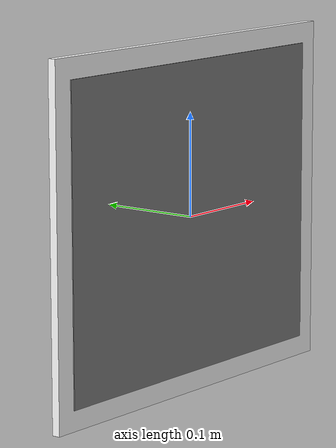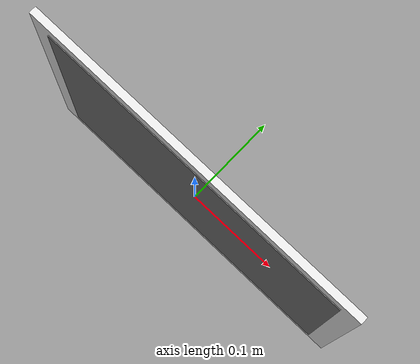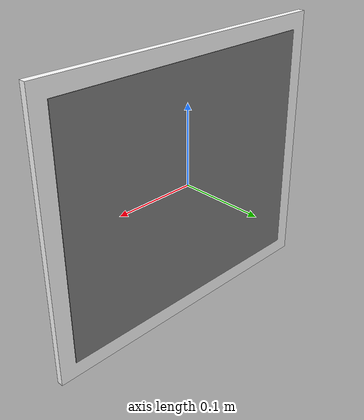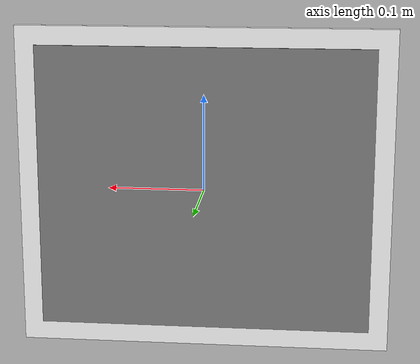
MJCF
<!-- checkerboard.xml -->
<mujoco>
  <asset>
    <!-- 棋盘格纹理 -->
    <texture name="checker_tex" type="2d" builtin="checker" rgb1="0 0 0" rgb2="1 1 1" width="512" height="512" mark="none"/>
    <!-- 材质：texrepeat="7 6" -->
    <!-- checker 纹理本身包含2个格子，所以 3.5 * 2 = 7格，3 * 2 = 6格 -->
    <material name="checker_mat" texture="checker_tex" texrepeat="3.5 3" reflectance="0"/>
    <!-- 增加一个纯白材质用于边框 -->
    <material name="white_mat" rgba="1 1 1 1" reflectance="0"/>
  </asset>

  <worldbody>
    <body name="checkerboard" pos="0 0 0">
        <!-- 白色底板 (比棋盘格大一圈，制造边框) -->
        <!-- 尺寸: X方向大2cm, Y方向大2cm, 厚度稍厚一点 -->
        <geom type="box" size="0.195 0.17 0.004" material="white_mat" euler="-90 0 0"/>

        <!-- 棋盘格纹理 (叠加在底板表面) -->
        <!-- pos: 在局部坐标系稍微突起一点 (0.005 vs 0.004) 避免 Z-fighting 闪烁 -->
        <geom type="box" size="0.175 0.15 0.005" material="checker_mat" euler="-90 0 0"/>
    </body>
  </worldbody>
</mujoco>
